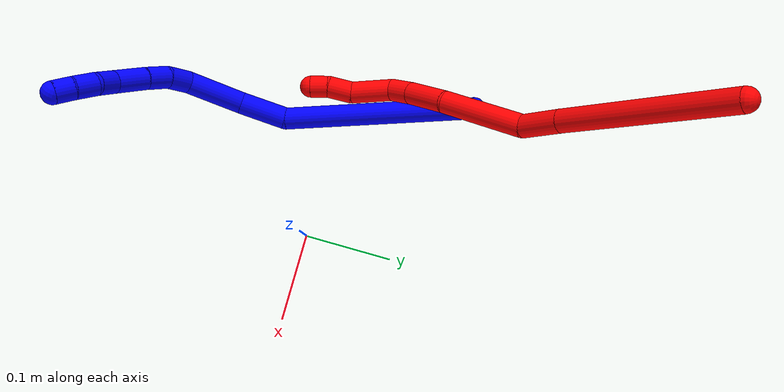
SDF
<sdf version="1.7">
 <world name="default">
  <model name="1">
   <static>0</static>
   <link name="1">
    <collision name="collision-cylinder-e_1_1_4">
     <pose>0.002174 -0.09189 -0.057215 2.1277 0.020078 0.036151</pose>
     <geometry><cylinder><radius>0.0125</radius><length>0.216537</length></cylinder></geometry>
     <surface>
      <friction><ode><mu>1.16</mu><mu2>1.16</mu2><slip1>0</slip1><slip2>0</slip2></ode></friction>
      <contact><ode><kp>1e+06</kp><kd>1</kd><max_vel>0</max_vel><min_depth>0.001</min_depth></ode></contact>
     </surface>
    </collision>
    <visual name="visual-cylinder-e_1_1_4">
     <pose>0.002174 -0.09189 -0.057215 2.1277 0.020078 0.036151</pose>
     <geometry><cylinder><radius>0.0125</radius><length>0.216537</length></cylinder></geometry>
     <material><ambient>0 0 1 1</ambient></material>
    </visual>
    <collision name="collision-cylinder-e_2_4_5">
     <pose>0.001167 -0.210648 -0.119643 1.76245 -0.11569 -0.140223</pose>
     <geometry><cylinder><radius>0.0125</radius><length>0.055107</length></cylinder></geometry>
     <surface>
      <friction><ode><mu>1.16</mu><mu2>1.16</mu2><slip1>0</slip1><slip2>0</slip2></ode></friction>
      <contact><ode><kp>1e+06</kp><kd>1</kd><max_vel>0</max_vel><min_depth>0.001</min_depth></ode></contact>
     </surface>
    </collision>
    <visual name="visual-cylinder-e_2_4_5">
     <pose>0.001167 -0.210648 -0.119643 1.76245 -0.11569 -0.140223</pose>
     <geometry><cylinder><radius>0.0125</radius><length>0.055107</length></cylinder></geometry>
     <material><ambient>0 0 1 1</ambient></material>
    </visual>
    <collision name="collision-cylinder-e_3_5_6">
     <pose>0.004878 -0.269294 -0.125164 1.58046 0.213569 0.215627</pose>
     <geometry><cylinder><radius>0.0125</radius><length>0.065036</length></cylinder></geometry>
     <surface>
      <friction><ode><mu>1.16</mu><mu2>1.16</mu2><slip1>0</slip1><slip2>0</slip2></ode></friction>
      <contact><ode><kp>1e+06</kp><kd>1</kd><max_vel>0</max_vel><min_depth>0.001</min_depth></ode></contact>
     </surface>
    </collision>
    <visual name="visual-cylinder-e_3_5_6">
     <pose>0.004878 -0.269294 -0.125164 1.58046 0.213569 0.215627</pose>
     <geometry><cylinder><radius>0.0125</radius><length>0.065036</length></cylinder></geometry>
     <material><ambient>0 0 1 1</ambient></material>
    </visual>
    <collision name="collision-cylinder-e_4_6_7">
     <pose>0.02022 -0.31166 -0.124674 1.49573 0.672152 0.626729</pose>
     <geometry><cylinder><radius>0.0125</radius><length>0.027141</length></cylinder></geometry>
     <surface>
      <friction><ode><mu>1.16</mu><mu2>1.16</mu2><slip1>0</slip1><slip2>0</slip2></ode></friction>
      <contact><ode><kp>1e+06</kp><kd>1</kd><max_vel>0</max_vel><min_depth>0.001</min_depth></ode></contact>
     </surface>
    </collision>
    <visual name="visual-cylinder-e_4_6_7">
     <pose>0.02022 -0.31166 -0.124674 1.49573 0.672152 0.626729</pose>
     <geometry><cylinder><radius>0.0125</radius><length>0.027141</length></cylinder></geometry>
     <material><ambient>0 0 1 1</ambient></material>
    </visual>
    <collision name="collision-cylinder-e_5_7_8">
     <pose>0.038094 -0.331693 -0.126228 1.81469 0.769301 0.955727</pose>
     <geometry><cylinder><radius>0.0125</radius><length>0.027093</length></cylinder></geometry>
     <surface>
      <friction><ode><mu>1.16</mu><mu2>1.16</mu2><slip1>0</slip1><slip2>0</slip2></ode></friction>
      <contact><ode><kp>1e+06</kp><kd>1</kd><max_vel>0</max_vel><min_depth>0.001</min_depth></ode></contact>
     </surface>
    </collision>
    <visual name="visual-cylinder-e_5_7_8">
     <pose>0.038094 -0.331693 -0.126228 1.81469 0.769301 0.955727</pose>
     <geometry><cylinder><radius>0.0125</radius><length>0.027093</length></cylinder></geometry>
     <material><ambient>0 0 1 1</ambient></material>
    </visual>
    <collision name="collision-cylinder-e_6_8_9">
     <pose>0.060393 -0.354003 -0.132911 1.89561 0.758958 1.01351</pose>
     <geometry><cylinder><radius>0.0125</radius><length>0.037422</length></cylinder></geometry>
     <surface>
      <friction><ode><mu>1.16</mu><mu2>1.16</mu2><slip1>0</slip1><slip2>0</slip2></ode></friction>
      <contact><ode><kp>1e+06</kp><kd>1</kd><max_vel>0</max_vel><min_depth>0.001</min_depth></ode></contact>
     </surface>
    </collision>
    <visual name="visual-cylinder-e_6_8_9">
     <pose>0.060393 -0.354003 -0.132911 1.89561 0.758958 1.01351</pose>
     <geometry><cylinder><radius>0.0125</radius><length>0.037422</length></cylinder></geometry>
     <material><ambient>0 0 1 1</ambient></material>
    </visual>
    <collision name="collision-cylinder-e_7_9_10">
     <pose>0.084342 -0.37302 -0.137484 1.60996 1.06336 1.09791</pose>
     <geometry><cylinder><radius>0.0125</radius><length>0.025336</length></cylinder></geometry>
     <surface>
      <friction><ode><mu>1.16</mu><mu2>1.16</mu2><slip1>0</slip1><slip2>0</slip2></ode></friction>
      <contact><ode><kp>1e+06</kp><kd>1</kd><max_vel>0</max_vel><min_depth>0.001</min_depth></ode></contact>
     </surface>
    </collision>
    <visual name="visual-cylinder-e_7_9_10">
     <pose>0.084342 -0.37302 -0.137484 1.60996 1.06336 1.09791</pose>
     <geometry><cylinder><radius>0.0125</radius><length>0.025336</length></cylinder></geometry>
     <material><ambient>0 0 1 1</ambient></material>
    </visual>
    <collision name="collision-cylinder-e_8_10_11">
     <pose>0.104255 -0.387201 -0.141165 1.97555 0.791393 1.12925</pose>
     <geometry><cylinder><radius>0.0125</radius><length>0.024859</length></cylinder></geometry>
     <surface>
      <friction><ode><mu>1.16</mu><mu2>1.16</mu2><slip1>0</slip1><slip2>0</slip2></ode></friction>
      <contact><ode><kp>1e+06</kp><kd>1</kd><max_vel>0</max_vel><min_depth>0.001</min_depth></ode></contact>
     </surface>
    </collision>
    <visual name="visual-cylinder-e_8_10_11">
     <pose>0.104255 -0.387201 -0.141165 1.97555 0.791393 1.12925</pose>
     <geometry><cylinder><radius>0.0125</radius><length>0.024859</length></cylinder></geometry>
     <material><ambient>0 0 1 1</ambient></material>
    </visual>
    <collision name="collision-cylinder-e_9_11_2">
     <pose>0.119866 -0.402497 -0.148682 2.08206 0.682384 1.09014</pose>
     <geometry><cylinder><radius>0.0125</radius><length>0.021469</length></cylinder></geometry>
     <surface>
      <friction><ode><mu>1.16</mu><mu2>1.16</mu2><slip1>0</slip1><slip2>0</slip2></ode></friction>
      <contact><ode><kp>1e+06</kp><kd>1</kd><max_vel>0</max_vel><min_depth>0.001</min_depth></ode></contact>
     </surface>
    </collision>
    <visual name="visual-cylinder-e_9_11_2">
     <pose>0.119866 -0.402497 -0.148682 2.08206 0.682384 1.09014</pose>
     <geometry><cylinder><radius>0.0125</radius><length>0.021469</length></cylinder></geometry>
     <material><ambient>0 0 1 1</ambient></material>
    </visual>
    <collision name="collision-sphere-2">
     <pose>0.126636 -0.409763 -0.152758 0 -0 0</pose>
     <geometry><sphere><radius>0.0125</radius></sphere></geometry>
     <surface>
      <friction><ode><mu>1.16</mu><mu2>1.16</mu2><slip1>0</slip1><slip2>0</slip2></ode></friction>
      <contact><ode><kp>1e+06</kp><kd>1</kd><max_vel>0</max_vel><min_depth>0.001</min_depth></ode></contact>
     </surface>
    </collision>
    <visual name="visual-sphere-2">
     <pose>0.126636 -0.409763 -0.152758 0 -0 0</pose>
     <geometry><sphere><radius>0.0125</radius></sphere></geometry>
     <material><ambient>0 0 1 1</ambient></material>
    </visual>
    <collision name="collision-sphere-11">
     <pose>0.113096 -0.395231 -0.144606 0 -0 0</pose>
     <geometry><sphere><radius>0.0125</radius></sphere></geometry>
     <surface>
      <friction><ode><mu>1.16</mu><mu2>1.16</mu2><slip1>0</slip1><slip2>0</slip2></ode></friction>
      <contact><ode><kp>1e+06</kp><kd>1</kd><max_vel>0</max_vel><min_depth>0.001</min_depth></ode></contact>
     </surface>
    </collision>
    <visual name="visual-sphere-11">
     <pose>0.113096 -0.395231 -0.144606 0 -0 0</pose>
     <geometry><sphere><radius>0.0125</radius></sphere></geometry>
     <material><ambient>0 0 1 1</ambient></material>
    </visual>
    <collision name="collision-sphere-10">
     <pose>0.095414 -0.379171 -0.137725 0 -0 0</pose>
     <geometry><sphere><radius>0.0125</radius></sphere></geometry>
     <surface>
      <friction><ode><mu>1.16</mu><mu2>1.16</mu2><slip1>0</slip1><slip2>0</slip2></ode></friction>
      <contact><ode><kp>1e+06</kp><kd>1</kd><max_vel>0</max_vel><min_depth>0.001</min_depth></ode></contact>
     </surface>
    </collision>
    <visual name="visual-sphere-10">
     <pose>0.095414 -0.379171 -0.137725 0 -0 0</pose>
     <geometry><sphere><radius>0.0125</radius></sphere></geometry>
     <material><ambient>0 0 1 1</ambient></material>
    </visual>
    <collision name="collision-sphere-9">
     <pose>0.07327 -0.366869 -0.137243 0 -0 0</pose>
     <geometry><sphere><radius>0.0125</radius></sphere></geometry>
     <surface>
      <friction><ode><mu>1.16</mu><mu2>1.16</mu2><slip1>0</slip1><slip2>0</slip2></ode></friction>
      <contact><ode><kp>1e+06</kp><kd>1</kd><max_vel>0</max_vel><min_depth>0.001</min_depth></ode></contact>
     </surface>
    </collision>
    <visual name="visual-sphere-9">
     <pose>0.07327 -0.366869 -0.137243 0 -0 0</pose>
     <geometry><sphere><radius>0.0125</radius></sphere></geometry>
     <material><ambient>0 0 1 1</ambient></material>
    </visual>
    <collision name="collision-sphere-4">
     <pose>0.004347 -0.18378 -0.11443 0 -0 0</pose>
     <geometry><sphere><radius>0.0125</radius></sphere></geometry>
     <surface>
      <friction><ode><mu>1.16</mu><mu2>1.16</mu2><slip1>0</slip1><slip2>0</slip2></ode></friction>
      <contact><ode><kp>1e+06</kp><kd>1</kd><max_vel>0</max_vel><min_depth>0.001</min_depth></ode></contact>
     </surface>
    </collision>
    <visual name="visual-sphere-4">
     <pose>0.004347 -0.18378 -0.11443 0 -0 0</pose>
     <geometry><sphere><radius>0.0125</radius></sphere></geometry>
     <material><ambient>0 0 1 1</ambient></material>
    </visual>
    <collision name="collision-sphere-1">
     <geometry><sphere><radius>0.0125</radius></sphere></geometry>
     <surface>
      <friction><ode><mu>1.16</mu><mu2>1.16</mu2><slip1>0</slip1><slip2>0</slip2></ode></friction>
      <contact><ode><kp>1e+06</kp><kd>1</kd><max_vel>0</max_vel><min_depth>0.001</min_depth></ode></contact>
     </surface>
    </collision>
    <visual name="visual-sphere-1">
     <geometry><sphere><radius>0.0125</radius></sphere></geometry>
     <material><ambient>0 0 1 1</ambient></material>
    </visual>
    <collision name="collision-sphere-8">
     <pose>0.047517 -0.341136 -0.128578 0 -0 0</pose>
     <geometry><sphere><radius>0.0125</radius></sphere></geometry>
     <surface>
      <friction><ode><mu>1.16</mu><mu2>1.16</mu2><slip1>0</slip1><slip2>0</slip2></ode></friction>
      <contact><ode><kp>1e+06</kp><kd>1</kd><max_vel>0</max_vel><min_depth>0.001</min_depth></ode></contact>
     </surface>
    </collision>
    <visual name="visual-sphere-8">
     <pose>0.047517 -0.341136 -0.128578 0 -0 0</pose>
     <geometry><sphere><radius>0.0125</radius></sphere></geometry>
     <material><ambient>0 0 1 1</ambient></material>
    </visual>
    <collision name="collision-sphere-5">
     <pose>-0.002014 -0.237516 -0.124857 0 -0 0</pose>
     <geometry><sphere><radius>0.0125</radius></sphere></geometry>
     <surface>
      <friction><ode><mu>1.16</mu><mu2>1.16</mu2><slip1>0</slip1><slip2>0</slip2></ode></friction>
      <contact><ode><kp>1e+06</kp><kd>1</kd><max_vel>0</max_vel><min_depth>0.001</min_depth></ode></contact>
     </surface>
    </collision>
    <visual name="visual-sphere-5">
     <pose>-0.002014 -0.237516 -0.124857 0 -0 0</pose>
     <geometry><sphere><radius>0.0125</radius></sphere></geometry>
     <material><ambient>0 0 1 1</ambient></material>
    </visual>
    <collision name="collision-sphere-6">
     <pose>0.011771 -0.301072 -0.125471 0 -0 0</pose>
     <geometry><sphere><radius>0.0125</radius></sphere></geometry>
     <surface>
      <friction><ode><mu>1.16</mu><mu2>1.16</mu2><slip1>0</slip1><slip2>0</slip2></ode></friction>
      <contact><ode><kp>1e+06</kp><kd>1</kd><max_vel>0</max_vel><min_depth>0.001</min_depth></ode></contact>
     </surface>
    </collision>
    <visual name="visual-sphere-6">
     <pose>0.011771 -0.301072 -0.125471 0 -0 0</pose>
     <geometry><sphere><radius>0.0125</radius></sphere></geometry>
     <material><ambient>0 0 1 1</ambient></material>
    </visual>
    <collision name="collision-sphere-7">
     <pose>0.02867 -0.322249 -0.123878 0 -0 0</pose>
     <geometry><sphere><radius>0.0125</radius></sphere></geometry>
     <surface>
      <friction><ode><mu>1.16</mu><mu2>1.16</mu2><slip1>0</slip1><slip2>0</slip2></ode></friction>
      <contact><ode><kp>1e+06</kp><kd>1</kd><max_vel>0</max_vel><min_depth>0.001</min_depth></ode></contact>
     </surface>
    </collision>
    <visual name="visual-sphere-7">
     <pose>0.02867 -0.322249 -0.123878 0 -0 0</pose>
     <geometry><sphere><radius>0.0125</radius></sphere></geometry>
     <material><ambient>0 0 1 1</ambient></material>
    </visual>
    <inertial>
     <pose>0.02399 -0.21486 -0.098169 0 -0 0</pose>
     <mass>0.5</mass>
     <inertia>
      <ixx>0.000955</ixx>
      <ixy>0</ixy>
      <ixz>0</ixz>
      <iyy>-0.000433</iyy>
      <iyz>0</iyz>
      <izz>0.000733</izz>
     </inertia>
    </inertial>
   </link>
   <pose>-0.190546 0.146224 0.030057 -0.368206 -1.01294 0.142657</pose>
  </model>
  <model name="2">
   <static>0</static>
   <link name="2">
    <collision name="collision-cylinder-e_1_1_4">
     <pose>0.010794 0.000619 -0.092736 -3.13491 0.115872 -3.02655</pose>
     <geometry><cylinder><radius>0.0125</radius><length>0.186729</length></cylinder></geometry>
     <surface>
      <friction><ode><mu>1.16</mu><mu2>1.16</mu2><slip1>0</slip1><slip2>0</slip2></ode></friction>
      <contact><ode><kp>1e+06</kp><kd>1</kd><max_vel>0</max_vel><min_depth>0.001</min_depth></ode></contact>
     </surface>
    </collision>
    <visual name="visual-cylinder-e_1_1_4">
     <pose>0.010794 0.000619 -0.092736 -3.13491 0.115872 -3.02655</pose>
     <geometry><cylinder><radius>0.0125</radius><length>0.186729</length></cylinder></geometry>
     <material><ambient>1 0 0 1</ambient></material>
    </visual>
    <collision name="collision-cylinder-e_2_4_5">
     <pose>0.024774 0.0011 -0.207862 3.13538 0.141333 3.05383</pose>
     <geometry><cylinder><radius>0.0125</radius><length>0.04523</length></cylinder></geometry>
     <surface>
      <friction><ode><mu>1.16</mu><mu2>1.16</mu2><slip1>0</slip1><slip2>0</slip2></ode></friction>
      <contact><ode><kp>1e+06</kp><kd>1</kd><max_vel>0</max_vel><min_depth>0.001</min_depth></ode></contact>
     </surface>
    </collision>
    <visual name="visual-cylinder-e_2_4_5">
     <pose>0.024774 0.0011 -0.207862 3.13538 0.141333 3.05383</pose>
     <geometry><cylinder><radius>0.0125</radius><length>0.04523</length></cylinder></geometry>
     <material><ambient>1 0 0 1</ambient></material>
    </visual>
    <collision name="collision-cylinder-e_3_5_6">
     <pose>0.017573 -0.011916 -0.274359 2.85755 -0.222312 -1.32563</pose>
     <geometry><cylinder><radius>0.0125</radius><length>0.094217</length></cylinder></geometry>
     <surface>
      <friction><ode><mu>1.16</mu><mu2>1.16</mu2><slip1>0</slip1><slip2>0</slip2></ode></friction>
      <contact><ode><kp>1e+06</kp><kd>1</kd><max_vel>0</max_vel><min_depth>0.001</min_depth></ode></contact>
     </surface>
    </collision>
    <visual name="visual-cylinder-e_3_5_6">
     <pose>0.017573 -0.011916 -0.274359 2.85755 -0.222312 -1.32563</pose>
     <geometry><cylinder><radius>0.0125</radius><length>0.094217</length></cylinder></geometry>
     <material><ambient>1 0 0 1</ambient></material>
    </visual>
    <collision name="collision-cylinder-e_4_6_7">
     <pose>0.002472 -0.02565 -0.342847 3.10645 -0.190881 -2.77855</pose>
     <geometry><cylinder><radius>0.0125</radius><length>0.049693</length></cylinder></geometry>
     <surface>
      <friction><ode><mu>1.16</mu><mu2>1.16</mu2><slip1>0</slip1><slip2>0</slip2></ode></friction>
      <contact><ode><kp>1e+06</kp><kd>1</kd><max_vel>0</max_vel><min_depth>0.001</min_depth></ode></contact>
     </surface>
    </collision>
    <visual name="visual-cylinder-e_4_6_7">
     <pose>0.002472 -0.02565 -0.342847 3.10645 -0.190881 -2.77855</pose>
     <geometry><cylinder><radius>0.0125</radius><length>0.049693</length></cylinder></geometry>
     <material><ambient>1 0 0 1</ambient></material>
    </visual>
    <collision name="collision-cylinder-e_5_7_8">
     <pose>-0.00395 -0.027933 -0.380915 3.03777 -0.123465 -1.74361</pose>
     <geometry><cylinder><radius>0.0125</radius><length>0.027734</length></cylinder></geometry>
     <surface>
      <friction><ode><mu>1.16</mu><mu2>1.16</mu2><slip1>0</slip1><slip2>0</slip2></ode></friction>
      <contact><ode><kp>1e+06</kp><kd>1</kd><max_vel>0</max_vel><min_depth>0.001</min_depth></ode></contact>
     </surface>
    </collision>
    <visual name="visual-cylinder-e_5_7_8">
     <pose>-0.00395 -0.027933 -0.380915 3.03777 -0.123465 -1.74361</pose>
     <geometry><cylinder><radius>0.0125</radius><length>0.027734</length></cylinder></geometry>
     <material><ambient>1 0 0 1</ambient></material>
    </visual>
    <collision name="collision-cylinder-e_6_8_9">
     <pose>-0.001974 -0.041287 -0.414907 2.61046 0.155169 0.556796</pose>
     <geometry><cylinder><radius>0.0125</radius><length>0.047672</length></cylinder></geometry>
     <surface>
      <friction><ode><mu>1.16</mu><mu2>1.16</mu2><slip1>0</slip1><slip2>0</slip2></ode></friction>
      <contact><ode><kp>1e+06</kp><kd>1</kd><max_vel>0</max_vel><min_depth>0.001</min_depth></ode></contact>
     </surface>
    </collision>
    <visual name="visual-cylinder-e_6_8_9">
     <pose>-0.001974 -0.041287 -0.414907 2.61046 0.155169 0.556796</pose>
     <geometry><cylinder><radius>0.0125</radius><length>0.047672</length></cylinder></geometry>
     <material><ambient>1 0 0 1</ambient></material>
    </visual>
    <collision name="collision-cylinder-e_7_9_10">
     <pose>4.5e-05 -0.063169 -0.445141 2.3549 -0.117864 -0.282465</pose>
     <geometry><cylinder><radius>0.0125</radius><length>0.028314</length></cylinder></geometry>
     <surface>
      <friction><ode><mu>1.16</mu><mu2>1.16</mu2><slip1>0</slip1><slip2>0</slip2></ode></friction>
      <contact><ode><kp>1e+06</kp><kd>1</kd><max_vel>0</max_vel><min_depth>0.001</min_depth></ode></contact>
     </surface>
    </collision>
    <visual name="visual-cylinder-e_7_9_10">
     <pose>4.5e-05 -0.063169 -0.445141 2.3549 -0.117864 -0.282465</pose>
     <geometry><cylinder><radius>0.0125</radius><length>0.028314</length></cylinder></geometry>
     <material><ambient>1 0 0 1</ambient></material>
    </visual>
    <collision name="collision-cylinder-e_8_10_2">
     <pose>-0.000446 -0.079739 -0.46275 2.43056 0.115238 0.30825</pose>
     <geometry><cylinder><radius>0.0125</radius><length>0.020411</length></cylinder></geometry>
     <surface>
      <friction><ode><mu>1.16</mu><mu2>1.16</mu2><slip1>0</slip1><slip2>0</slip2></ode></friction>
      <contact><ode><kp>1e+06</kp><kd>1</kd><max_vel>0</max_vel><min_depth>0.001</min_depth></ode></contact>
     </surface>
    </collision>
    <visual name="visual-cylinder-e_8_10_2">
     <pose>-0.000446 -0.079739 -0.46275 2.43056 0.115238 0.30825</pose>
     <geometry><cylinder><radius>0.0125</radius><length>0.020411</length></cylinder></geometry>
     <material><ambient>1 0 0 1</ambient></material>
    </visual>
    <collision name="collision-sphere-2">
     <pose>0.000728 -0.086355 -0.470432 0 -0 0</pose>
     <geometry><sphere><radius>0.0125</radius></sphere></geometry>
     <surface>
      <friction><ode><mu>1.16</mu><mu2>1.16</mu2><slip1>0</slip1><slip2>0</slip2></ode></friction>
      <contact><ode><kp>1e+06</kp><kd>1</kd><max_vel>0</max_vel><min_depth>0.001</min_depth></ode></contact>
     </surface>
    </collision>
    <visual name="visual-sphere-2">
     <pose>0.000728 -0.086355 -0.470432 0 -0 0</pose>
     <geometry><sphere><radius>0.0125</radius></sphere></geometry>
     <material><ambient>1 0 0 1</ambient></material>
    </visual>
    <collision name="collision-sphere-10">
     <pose>-0.001619 -0.073123 -0.455069 0 -0 0</pose>
     <geometry><sphere><radius>0.0125</radius></sphere></geometry>
     <surface>
      <friction><ode><mu>1.16</mu><mu2>1.16</mu2><slip1>0</slip1><slip2>0</slip2></ode></friction>
      <contact><ode><kp>1e+06</kp><kd>1</kd><max_vel>0</max_vel><min_depth>0.001</min_depth></ode></contact>
     </surface>
    </collision>
    <visual name="visual-sphere-10">
     <pose>-0.001619 -0.073123 -0.455069 0 -0 0</pose>
     <geometry><sphere><radius>0.0125</radius></sphere></geometry>
     <material><ambient>1 0 0 1</ambient></material>
    </visual>
    <collision name="collision-sphere-9">
     <pose>0.00171 -0.053215 -0.435213 0 -0 0</pose>
     <geometry><sphere><radius>0.0125</radius></sphere></geometry>
     <surface>
      <friction><ode><mu>1.16</mu><mu2>1.16</mu2><slip1>0</slip1><slip2>0</slip2></ode></friction>
      <contact><ode><kp>1e+06</kp><kd>1</kd><max_vel>0</max_vel><min_depth>0.001</min_depth></ode></contact>
     </surface>
    </collision>
    <visual name="visual-sphere-9">
     <pose>0.00171 -0.053215 -0.435213 0 -0 0</pose>
     <geometry><sphere><radius>0.0125</radius></sphere></geometry>
     <material><ambient>1 0 0 1</ambient></material>
    </visual>
    <collision name="collision-sphere-4">
     <pose>0.021588 0.001239 -0.185473 0 -0 0</pose>
     <geometry><sphere><radius>0.0125</radius></sphere></geometry>
     <surface>
      <friction><ode><mu>1.16</mu><mu2>1.16</mu2><slip1>0</slip1><slip2>0</slip2></ode></friction>
      <contact><ode><kp>1e+06</kp><kd>1</kd><max_vel>0</max_vel><min_depth>0.001</min_depth></ode></contact>
     </surface>
    </collision>
    <visual name="visual-sphere-4">
     <pose>0.021588 0.001239 -0.185473 0 -0 0</pose>
     <geometry><sphere><radius>0.0125</radius></sphere></geometry>
     <material><ambient>1 0 0 1</ambient></material>
    </visual>
    <collision name="collision-sphere-1">
     <geometry><sphere><radius>0.0125</radius></sphere></geometry>
     <surface>
      <friction><ode><mu>1.16</mu><mu2>1.16</mu2><slip1>0</slip1><slip2>0</slip2></ode></friction>
      <contact><ode><kp>1e+06</kp><kd>1</kd><max_vel>0</max_vel><min_depth>0.001</min_depth></ode></contact>
     </surface>
    </collision>
    <visual name="visual-sphere-1">
     <geometry><sphere><radius>0.0125</radius></sphere></geometry>
     <material><ambient>1 0 0 1</ambient></material>
    </visual>
    <collision name="collision-sphere-8">
     <pose>-0.005657 -0.029359 -0.394602 0 -0 0</pose>
     <geometry><sphere><radius>0.0125</radius></sphere></geometry>
     <surface>
      <friction><ode><mu>1.16</mu><mu2>1.16</mu2><slip1>0</slip1><slip2>0</slip2></ode></friction>
      <contact><ode><kp>1e+06</kp><kd>1</kd><max_vel>0</max_vel><min_depth>0.001</min_depth></ode></contact>
     </surface>
    </collision>
    <visual name="visual-sphere-8">
     <pose>-0.005657 -0.029359 -0.394602 0 -0 0</pose>
     <geometry><sphere><radius>0.0125</radius></sphere></geometry>
     <material><ambient>1 0 0 1</ambient></material>
    </visual>
    <collision name="collision-sphere-5">
     <pose>0.02796 0.000961 -0.230251 0 -0 0</pose>
     <geometry><sphere><radius>0.0125</radius></sphere></geometry>
     <surface>
      <friction><ode><mu>1.16</mu><mu2>1.16</mu2><slip1>0</slip1><slip2>0</slip2></ode></friction>
      <contact><ode><kp>1e+06</kp><kd>1</kd><max_vel>0</max_vel><min_depth>0.001</min_depth></ode></contact>
     </surface>
    </collision>
    <visual name="visual-sphere-5">
     <pose>0.02796 0.000961 -0.230251 0 -0 0</pose>
     <geometry><sphere><radius>0.0125</radius></sphere></geometry>
     <material><ambient>1 0 0 1</ambient></material>
    </visual>
    <collision name="collision-sphere-6">
     <pose>0.007186 -0.024793 -0.318467 0 -0 0</pose>
     <geometry><sphere><radius>0.0125</radius></sphere></geometry>
     <surface>
      <friction><ode><mu>1.16</mu><mu2>1.16</mu2><slip1>0</slip1><slip2>0</slip2></ode></friction>
      <contact><ode><kp>1e+06</kp><kd>1</kd><max_vel>0</max_vel><min_depth>0.001</min_depth></ode></contact>
     </surface>
    </collision>
    <visual name="visual-sphere-6">
     <pose>0.007186 -0.024793 -0.318467 0 -0 0</pose>
     <geometry><sphere><radius>0.0125</radius></sphere></geometry>
     <material><ambient>1 0 0 1</ambient></material>
    </visual>
    <collision name="collision-sphere-7">
     <pose>-0.002242 -0.026507 -0.367227 0 -0 0</pose>
     <geometry><sphere><radius>0.0125</radius></sphere></geometry>
     <surface>
      <friction><ode><mu>1.16</mu><mu2>1.16</mu2><slip1>0</slip1><slip2>0</slip2></ode></friction>
      <contact><ode><kp>1e+06</kp><kd>1</kd><max_vel>0</max_vel><min_depth>0.001</min_depth></ode></contact>
     </surface>
    </collision>
    <visual name="visual-sphere-7">
     <pose>-0.002242 -0.026507 -0.367227 0 -0 0</pose>
     <geometry><sphere><radius>0.0125</radius></sphere></geometry>
     <material><ambient>1 0 0 1</ambient></material>
    </visual>
    <inertial>
     <pose>0.009406 -0.016782 -0.243994 0 -0 0</pose>
     <mass>0.5</mass>
     <inertia>
      <ixx>-0.000666</ixx>
      <ixy>0</ixy>
      <ixz>0</ixz>
      <iyy>0.000405</iyy>
      <iyz>0</iyz>
      <izz>-5.9e-05</izz>
     </inertia>
    </inertial>
   </link>
   <pose>-0.208262 0.357662 0.274721 -0.812094 0.072028 0.146966</pose>
  </model>
 </world>
</sdf>
